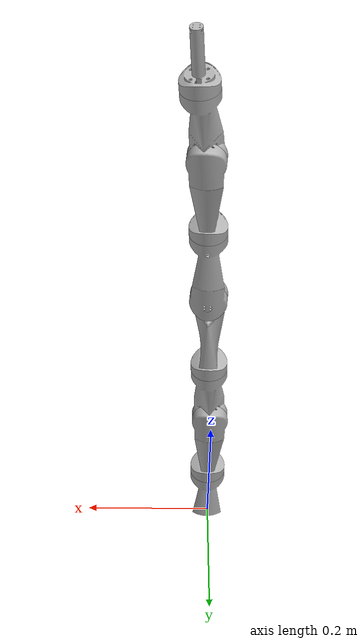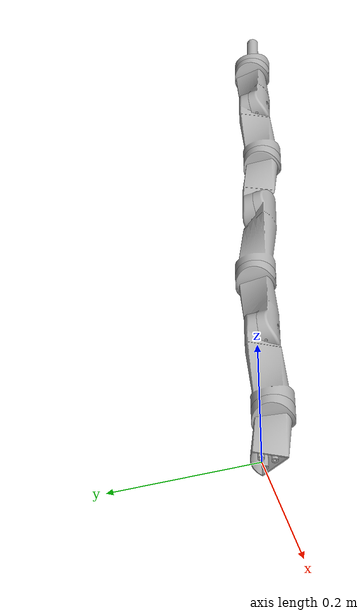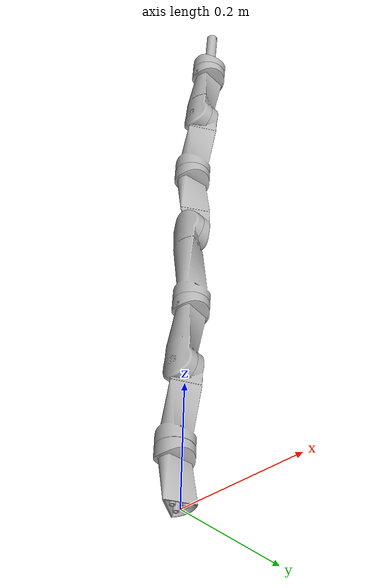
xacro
<?xml version="1.0" ?>
<robot name="panda_arm" xmlns:xacro="http://www.ros.org/wiki/xacro">

<xacro:include filename="$(find panda_arm_description)/urdf/materials.xacro" />
<xacro:include filename="$(find panda_arm_description)/urdf/panda_arm.trans" />
<xacro:include filename="$(find panda_arm_description)/urdf/panda_arm.gazebo" />
<link name="base_link">
  <inertial>
    <origin xyz="0.0017660045370066035 -0.011047458535403325 0.060406502603474924" rpy="0 0 0"/>
    <mass value="0.08258317736771989"/>
    <inertia ixx="6.6e-05" iyy="5.9e-05" izz="2.1e-05" ixy="-0.0" iyz="-1e-06" ixz="-1e-06"/>
  </inertial>
  <visual>
    <origin xyz="0 0 0" rpy="0 0 0"/>
    <geometry>
      <mesh filename="file://$(find panda_arm_description)/meshes/base_link.stl" scale="0.001 0.001 0.001"/>
    </geometry>
    <material name="silver"/>
  </visual>
  <collision>
    <origin xyz="0 0 0" rpy="0 0 0"/>
    <geometry>
      <mesh filename="file://$(find panda_arm_description)/meshes/base_link.stl" scale="0.001 0.001 0.001"/>
    </geometry>
  </collision>
</link>

<link name="link_1_1">
  <inertial>
    <origin xyz="0.00031262479548673557 0.01106815534135315 0.09495954582519398" rpy="0 0 0"/>
    <mass value="0.11654972199716704"/>
    <inertia ixx="0.000262" iyy="0.000255" izz="3.3e-05" ixy="0.0" iyz="-3.5e-05" ixz="0.0"/>
  </inertial>
  <visual>
    <origin xyz="-0.002208 0.016448 -0.083652" rpy="0 0 0"/>
    <geometry>
      <mesh filename="file://$(find panda_arm_description)/meshes/link_1_1.stl" scale="0.001 0.001 0.001"/>
    </geometry>
    <material name="silver"/>
  </visual>
  <collision>
    <origin xyz="-0.002208 0.016448 -0.083652" rpy="0 0 0"/>
    <geometry>
      <mesh filename="file://$(find panda_arm_description)/meshes/link_1_1.stl" scale="0.001 0.001 0.001"/>
    </geometry>
  </collision>
</link>

<link name="link_2_1">
  <inertial>
    <origin xyz="0.003515363027399982 -0.0009832407405133362 0.07652708782525441" rpy="0 0 0"/>
    <mass value="0.10885040742248056"/>
    <inertia ixx="0.000217" iyy="0.00021" izz="3.2e-05" ixy="-1e-06" iyz="-2.1e-05" ixz="-7e-06"/>
  </inertial>
  <visual>
    <origin xyz="-0.002504 0.006613 -0.223767" rpy="0 0 0"/>
    <geometry>
      <mesh filename="file://$(find panda_arm_description)/meshes/link_2_1.stl" scale="0.001 0.001 0.001"/>
    </geometry>
    <material name="silver"/>
  </visual>
  <collision>
    <origin xyz="-0.002504 0.006613 -0.223767" rpy="0 0 0"/>
    <geometry>
      <mesh filename="file://$(find panda_arm_description)/meshes/link_2_1.stl" scale="0.001 0.001 0.001"/>
    </geometry>
  </collision>
</link>

<link name="link_3_1">
  <inertial>
    <origin xyz="0.002713333164679541 -0.009837600525128503 0.09508440874938068" rpy="0 0 0"/>
    <mass value="0.11646711635422669"/>
    <inertia ixx="0.000262" iyy="0.000256" izz="3.3e-05" ixy="1e-06" iyz="3.3e-05" ixz="-6e-06"/>
  </inertial>
  <visual>
    <origin xyz="-0.007341 -0.000298 -0.343033" rpy="0 0 0"/>
    <geometry>
      <mesh filename="file://$(find panda_arm_description)/meshes/link_3_1.stl" scale="0.001 0.001 0.001"/>
    </geometry>
    <material name="silver"/>
  </visual>
  <collision>
    <origin xyz="-0.007341 -0.000298 -0.343033" rpy="0 0 0"/>
    <geometry>
      <mesh filename="file://$(find panda_arm_description)/meshes/link_3_1.stl" scale="0.001 0.001 0.001"/>
    </geometry>
  </collision>
</link>

<link name="link_4_1">
  <inertial>
    <origin xyz="0.002449499563106333 0.0010217614101080946 0.07725242010487426" rpy="0 0 0"/>
    <mass value="0.10727488566228834"/>
    <inertia ixx="0.000215" iyy="0.000208" izz="3.1e-05" ixy="-0.0" iyz="2e-05" ixz="-6e-06"/>
  </inertial>
  <visual>
    <origin xyz="-0.011973 0.008047 -0.483285" rpy="0 0 0"/>
    <geometry>
      <mesh filename="file://$(find panda_arm_description)/meshes/link_4_1.stl" scale="0.001 0.001 0.001"/>
    </geometry>
    <material name="silver"/>
  </visual>
  <collision>
    <origin xyz="-0.011973 0.008047 -0.483285" rpy="0 0 0"/>
    <geometry>
      <mesh filename="file://$(find panda_arm_description)/meshes/link_4_1.stl" scale="0.001 0.001 0.001"/>
    </geometry>
  </collision>
</link>

<link name="link_5_1">
  <inertial>
    <origin xyz="0.004911580903263286 0.011038733645343886 0.09494525300156975" rpy="0 0 0"/>
    <mass value="0.11592466835321474"/>
    <inertia ixx="0.00026" iyy="0.000253" izz="3.4e-05" ixy="-2e-06" iyz="-3.4e-05" ixz="-1.2e-05"/>
  </inertial>
  <visual>
    <origin xyz="-0.015668 0.014908 -0.603095" rpy="0 0 0"/>
    <geometry>
      <mesh filename="file://$(find panda_arm_description)/meshes/link_5_1.stl" scale="0.001 0.001 0.001"/>
    </geometry>
    <material name="silver"/>
  </visual>
  <collision>
    <origin xyz="-0.015668 0.014908 -0.603095" rpy="0 0 0"/>
    <geometry>
      <mesh filename="file://$(find panda_arm_description)/meshes/link_5_1.stl" scale="0.001 0.001 0.001"/>
    </geometry>
  </collision>
</link>

<link name="link_6_1">
  <inertial>
    <origin xyz="0.0073792409450795585 -0.002556241932709793 0.07636965698231746" rpy="0 0 0"/>
    <mass value="0.1082897436811057"/>
    <inertia ixx="0.000213" iyy="0.000209" izz="3.3e-05" ixy="-2e-06" iyz="-1.5e-05" ixz="-1.9e-05"/>
  </inertial>
  <visual>
    <origin xyz="-0.022174 0.005137 -0.743064" rpy="0 0 0"/>
    <geometry>
      <mesh filename="file://$(find panda_arm_description)/meshes/link_6_1.stl" scale="0.001 0.001 0.001"/>
    </geometry>
    <material name="silver"/>
  </visual>
  <collision>
    <origin xyz="-0.022174 0.005137 -0.743064" rpy="0 0 0"/>
    <geometry>
      <mesh filename="file://$(find panda_arm_description)/meshes/link_6_1.stl" scale="0.001 0.001 0.001"/>
    </geometry>
  </collision>
</link>

<link name="end_link_1">
  <inertial>
    <origin xyz="0.0013729052637744474 -0.0007664119617207588 0.015298722768582795" rpy="0 0 0"/>
    <mass value="0.015751028678291024"/>
    <inertia ixx="4e-06" iyy="4e-06" izz="7e-06" ixy="0.0" iyz="0.0" ixz="0.0"/>
  </inertial>
  <visual>
    <origin xyz="-0.034204 0.001252 -0.86183" rpy="0 0 0"/>
    <geometry>
      <mesh filename="file://$(find panda_arm_description)/meshes/end_link_1.stl" scale="0.001 0.001 0.001"/>
    </geometry>
    <material name="silver"/>
  </visual>
  <collision>
    <origin xyz="-0.034204 0.001252 -0.86183" rpy="0 0 0"/>
    <geometry>
      <mesh filename="file://$(find panda_arm_description)/meshes/end_link_1.stl" scale="0.001 0.001 0.001"/>
    </geometry>
  </collision>
</link>

<link name="finger_1">
  <inertial>
    <origin xyz="0.0034157488670873634 -0.0007645131071471092 0.036785896698056875" rpy="0 0 0"/>
    <mass value="0.009061941640702804"/>
    <inertia ixx="4e-06" iyy="4e-06" izz="1e-06" ixy="0.0" iyz="0.0" ixz="-0.0"/>
  </inertial>
  <visual>
    <origin xyz="-0.035887 0.001231 -0.884098" rpy="0 0 0"/>
    <geometry>
      <mesh filename="file://$(find panda_arm_description)/meshes/finger_1.stl" scale="0.001 0.001 0.001"/>
    </geometry>
    <material name="silver"/>
  </visual>
  <collision>
    <origin xyz="-0.035887 0.001231 -0.884098" rpy="0 0 0"/>
    <geometry>
      <mesh filename="file://$(find panda_arm_description)/meshes/finger_1.stl" scale="0.001 0.001 0.001"/>
    </geometry>
  </collision>
</link>

<joint name="joint_1" type="revolute">
  <origin xyz="0.002208 -0.016448 0.083652" rpy="0 0 0"/>
  <parent link="base_link"/>
  <child link="link_1_1"/>
  <axis xyz="-0.019029 2e-06 -0.999819"/>
  <limit upper="2.617994" lower="-2.617994" effort="100" velocity="100"/>
</joint>

<joint name="joint_2" type="revolute">
  <origin xyz="0.000296 0.009835 0.140115" rpy="0 0 0"/>
  <parent link="link_1_1"/>
  <child link="link_2_1"/>
  <axis xyz="0.000116 1.0 0.0"/>
  <limit upper="1.919862" lower="-1.919862" effort="100" velocity="100"/>
</joint>

<joint name="joint_3" type="revolute">
  <origin xyz="0.004837 0.006911 0.119266" rpy="0 0 0"/>
  <parent link="link_2_1"/>
  <child link="link_3_1"/>
  <axis xyz="-0.038214 4e-06 -0.99927"/>
  <limit upper="2.617994" lower="-2.617994" effort="100" velocity="100"/>
</joint>

<joint name="joint_4" type="revolute">
  <origin xyz="0.004632 -0.008345 0.140252" rpy="0 0 0"/>
  <parent link="link_3_1"/>
  <child link="link_4_1"/>
  <axis xyz="-0.087223 -0.996183 0.003331"/>
  <limit upper="1.919862" lower="-1.919862" effort="100" velocity="100"/>
</joint>

<joint name="joint_5" type="revolute">
  <origin xyz="0.003695 -0.006861 0.11981" rpy="0 0 0"/>
  <parent link="link_4_1"/>
  <child link="link_5_1"/>
  <axis xyz="-0.038214 4e-06 -0.99927"/>
  <limit upper="2.617994" lower="-2.617994" effort="100" velocity="100"/>
</joint>

<joint name="joint_6" type="revolute">
  <origin xyz="0.006506 0.009771 0.139969" rpy="0 0 0"/>
  <parent link="link_5_1"/>
  <child link="link_6_1"/>
  <axis xyz="0.087223 0.996183 -0.003331"/>
  <limit upper="1.919862" lower="-1.919862" effort="100" velocity="100"/>
</joint>

<joint name="joint_7" type="revolute">
  <origin xyz="0.01203 0.003885 0.118766" rpy="0 0 0"/>
  <parent link="link_6_1"/>
  <child link="end_link_1"/>
  <axis xyz="-0.078529 0.010972 -0.996851"/>
  <limit upper="2.617994" lower="-2.617994" effort="100" velocity="100"/>
</joint>

<joint name="end_joint" type="fixed">
  <origin xyz="0.001683 2.1e-05 0.022268" rpy="0 0 0"/>
  <parent link="end_link_1"/>
  <child link="finger_1"/>
</joint>

</robot>

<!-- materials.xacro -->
<robot name="panda_arm" xmlns:xacro="http://www.ros.org/wiki/xacro" >

<material name="silver">
  <color rgba="0.700 0.700 0.700 1.000"/>
</material>

</robot>

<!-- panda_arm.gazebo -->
<robot name="panda_arm" xmlns:xacro="http://www.ros.org/wiki/xacro" >

<xacro:property name="body_color" value="Gazebo/Silver" />

<gazebo>
  <plugin name="control" filename="libgazebo_ros_control.so"/>
</gazebo>
<gazebo reference="base_link">
  <material>${body_color}</material>
  <mu1>0.2</mu1>
  <mu2>0.2</mu2>
  <self_collide>true</self_collide>
  <gravity>true</gravity>
</gazebo>

<gazebo reference="link_1_1">
  <material>${body_color}</material>
  <mu1>0.2</mu1>
  <mu2>0.2</mu2>
  <self_collide>true</self_collide>
</gazebo>

<gazebo reference="link_2_1">
  <material>${body_color}</material>
  <mu1>0.2</mu1>
  <mu2>0.2</mu2>
  <self_collide>true</self_collide>
</gazebo>

<gazebo reference="link_3_1">
  <material>${body_color}</material>
  <mu1>0.2</mu1>
  <mu2>0.2</mu2>
  <self_collide>true</self_collide>
</gazebo>

<gazebo reference="link_4_1">
  <material>${body_color}</material>
  <mu1>0.2</mu1>
  <mu2>0.2</mu2>
  <self_collide>true</self_collide>
</gazebo>

<gazebo reference="link_5_1">
  <material>${body_color}</material>
  <mu1>0.2</mu1>
  <mu2>0.2</mu2>
  <self_collide>true</self_collide>
</gazebo>

<gazebo reference="link_6_1">
  <material>${body_color}</material>
  <mu1>0.2</mu1>
  <mu2>0.2</mu2>
  <self_collide>true</self_collide>
</gazebo>

<gazebo reference="end_link_1">
  <material>${body_color}</material>
  <mu1>0.2</mu1>
  <mu2>0.2</mu2>
  <self_collide>true</self_collide>
</gazebo>

<gazebo reference="finger_1">
  <material>${body_color}</material>
  <mu1>0.2</mu1>
  <mu2>0.2</mu2>
  <self_collide>true</self_collide>
</gazebo>

</robot>
